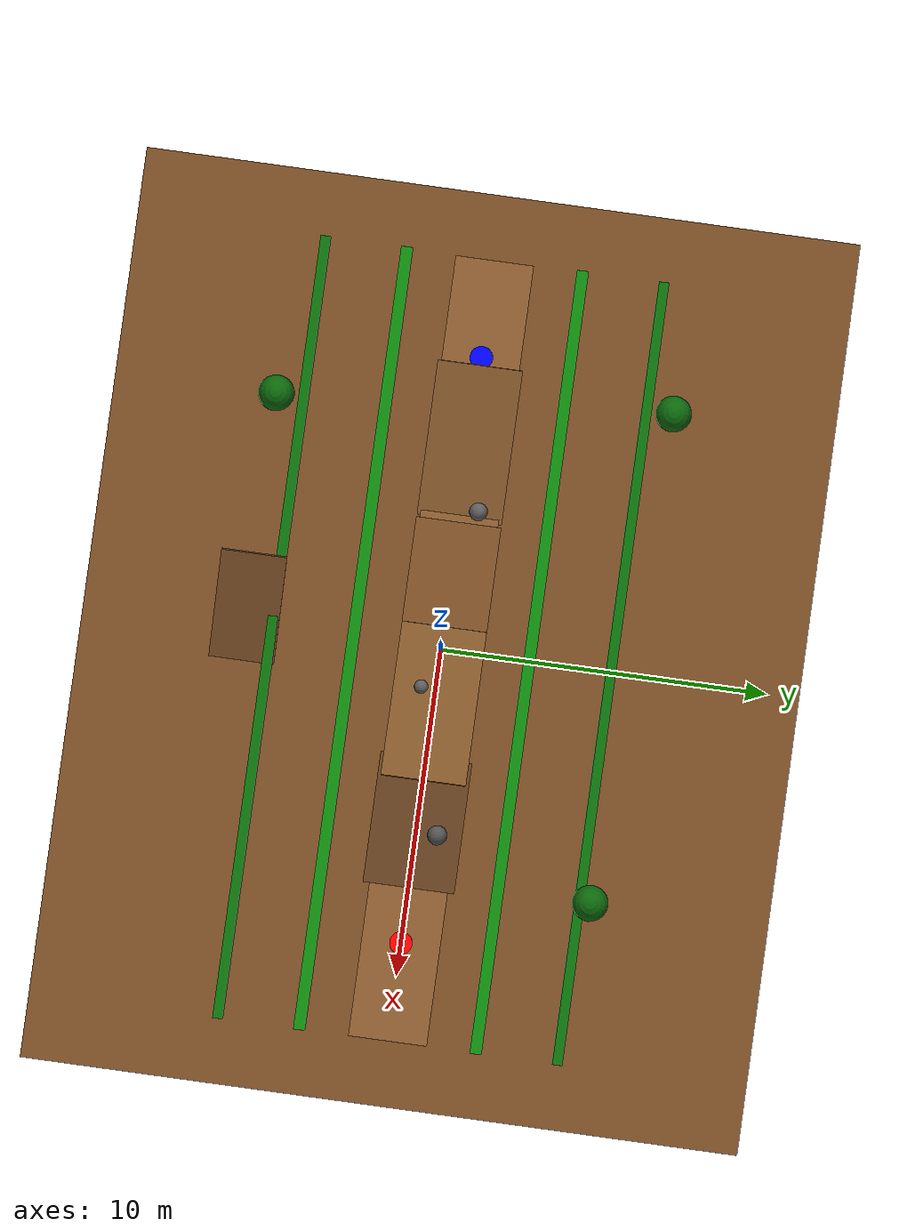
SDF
<?xml version="1.0" ?>
<sdf version="1.10">
  <world name="agricultural_world">

    <!-- FÍSICA -->

    <physics name="1ms" type="ignored">
      <max_step_size>0.001</max_step_size>
      <real_time_factor>1.0</real_time_factor>
    </physics>

    <plugin filename="gz-sim-physics-system"
            name="gz::sim::systems::Physics"/>

    <plugin filename="gz-sim-scene-broadcaster-system"
            name="gz::sim::systems::SceneBroadcaster"/>

    <plugin filename="gz-sim-user-commands-system"
            name="gz::sim::systems::UserCommands"/>

    <!-- Necessário para sensores como LiDAR -->
    <plugin filename="gz-sim-sensors-system"
            name="gz::sim::systems::Sensors">
      <render_engine>ogre2</render_engine>
    </plugin>

    <!-- Necessário depois para IMU / inclinação -->
    <plugin filename="gz-sim-imu-system"
            name="gz::sim::systems::Imu"/>

    <!-- LUZ DO SOL -->

    <light type="directional" name="sun">
      <cast_shadows>true</cast_shadows>
      <pose>0 0 15 0 0 0</pose>
      <diffuse>0.9 0.85 0.75 1</diffuse>
      <specular>0.2 0.2 0.2 1</specular>
      <direction>-0.5 0.2 -0.9</direction>
    </light>

    <!-- SOLO BASE -->

    <model name="soil_ground">
      <static>true</static>
      <pose>0 0 -0.05 0 0 0</pose>
      <link name="link">

        <collision name="collision">
          <geometry>
            <box>
              <size>28 22 0.10</size>
            </box>
          </geometry>
        </collision>

        <visual name="visual">
          <geometry>
            <box>
              <size>28 22 0.10</size>
            </box>
          </geometry>
          <material>
            <ambient>0.35 0.22 0.10 1</ambient>
            <diffuse>0.48 0.30 0.14 1</diffuse>
          </material>
        </visual>

      </link>
    </model>

    <!-- CAMINHO CENTRAL AGRÍCOLA -->

    <model name="central_dirt_path">
      <static>true</static>
      <pose>0 0 0.01 0 0 0</pose>
      <link name="link">
        <visual name="visual">
          <geometry>
            <box>
              <size>24 2.4 0.03</size>
            </box>
          </geometry>
          <material>
            <ambient>0.42 0.28 0.15 1</ambient>
            <diffuse>0.55 0.36 0.18 1</diffuse>
          </material>
        </visual>
      </link>
    </model>

    <!-- SUBIDA PRINCIPAL -->
    <!-- Inclinação aproximada: 10 graus -->

    <model name="slope_up_10deg">
      <static>true</static>
      <pose>-6 0 0.28 0 0.17 0</pose>
      <link name="link">

        <collision name="collision">
          <geometry>
            <box>
              <size>5.5 2.6 0.12</size>
            </box>
          </geometry>
        </collision>

        <visual name="visual">
          <geometry>
            <box>
              <size>5.5 2.6 0.12</size>
            </box>
          </geometry>
          <material>
            <ambient>0.38 0.24 0.11 1</ambient>
            <diffuse>0.52 0.34 0.16 1</diffuse>
          </material>
        </visual>

      </link>
    </model>

    <!-- PLATAFORMA ALTA -->

    <model name="upper_plateau">
      <static>true</static>
      <pose>-2.3 0 0.62 0 0 0</pose>
      <link name="link">

        <collision name="collision">
          <geometry>
            <box>
              <size>3.2 2.6 0.12</size>
            </box>
          </geometry>
        </collision>

        <visual name="visual">
          <geometry>
            <box>
              <size>3.2 2.6 0.12</size>
            </box>
          </geometry>
          <material>
            <ambient>0.36 0.23 0.10 1</ambient>
            <diffuse>0.50 0.32 0.15 1</diffuse>
          </material>
        </visual>

      </link>
    </model>

    <!-- DESCIDA PARA O VALE -->
    <!-- Inclinação aproximada: -10 graus -->

    <model name="slope_down_10deg">
      <static>true</static>
      <pose>1.3 0 0.35 0 -0.17 0</pose>
      <link name="link">

        <collision name="collision">
          <geometry>
            <box>
              <size>5.5 2.6 0.12</size>
            </box>
          </geometry>
        </collision>

        <visual name="visual">
          <geometry>
            <box>
              <size>5.5 2.6 0.12</size>
            </box>
          </geometry>
          <material>
            <ambient>0.38 0.24 0.11 1</ambient>
            <diffuse>0.52 0.34 0.16 1</diffuse>
          </material>
        </visual>

      </link>
    </model>

    <!-- VALE BAIXO -->
    <!-- Zona para testar estabilidade -->

    <model name="valley_low_area">
      <static>true</static>
      <pose>5.3 0 0.06 0 0 0</pose>
      <link name="link">

        <collision name="collision">
          <geometry>
            <box>
              <size>4.0 2.8 0.10</size>
            </box>
          </geometry>
        </collision>

        <visual name="visual">
          <geometry>
            <box>
              <size>4.0 2.8 0.10</size>
            </box>
          </geometry>
          <material>
            <ambient>0.30 0.19 0.09 1</ambient>
            <diffuse>0.40 0.25 0.12 1</diffuse>
          </material>
        </visual>

      </link>
    </model>

    <!-- RAMPA MAIS DIFÍCIL -->
    <!-- Inclinação aproximada: 20 graus -->
    <!-- Para teste extremo -->

    <model name="test_slope_20deg">
      <static>true</static>
      <pose>0 -6 0.35 0 0.35 0</pose>
      <link name="link">

        <collision name="collision">
          <geometry>
            <box>
              <size>4.5 2.0 0.12</size>
            </box>
          </geometry>
        </collision>

        <visual name="visual">
          <geometry>
            <box>
              <size>4.5 2.0 0.12</size>
            </box>
          </geometry>
          <material>
            <ambient>0.32 0.20 0.10 1</ambient>
            <diffuse>0.46 0.29 0.14 1</diffuse>
          </material>
        </visual>

      </link>
    </model>

    <!-- LINHAS DE CULTIVO -->
    <!-- Com colisão para servirem como limites -->

    <model name="crop_row_left_1">
      <static>true</static>
      <pose>0 2.7 0.32 0 0 0</pose>
      <link name="link">

        <collision name="collision">
          <geometry>
            <box>
              <size>24 0.35 0.60</size>
            </box>
          </geometry>
        </collision>

        <visual name="visual">
          <geometry>
            <box>
              <size>24 0.35 0.60</size>
            </box>
          </geometry>
          <material>
            <ambient>0.04 0.30 0.04 1</ambient>
            <diffuse>0.05 0.55 0.05 1</diffuse>
          </material>
        </visual>

      </link>
    </model>

    <model name="crop_row_right_1">
      <static>true</static>
      <pose>0 -2.7 0.32 0 0 0</pose>
      <link name="link">

        <collision name="collision">
          <geometry>
            <box>
              <size>24 0.35 0.60</size>
            </box>
          </geometry>
        </collision>

        <visual name="visual">
          <geometry>
            <box>
              <size>24 0.35 0.60</size>
            </box>
          </geometry>
          <material>
            <ambient>0.04 0.30 0.04 1</ambient>
            <diffuse>0.05 0.55 0.05 1</diffuse>
          </material>
        </visual>

      </link>
    </model>

    <model name="crop_row_left_2">
      <static>true</static>
      <pose>0 5.2 0.28 0 0 0</pose>
      <link name="link">
        <visual name="visual">
          <geometry>
            <box>
              <size>24 0.30 0.50</size>
            </box>
          </geometry>
          <material>
            <ambient>0.03 0.25 0.03 1</ambient>
            <diffuse>0.04 0.45 0.04 1</diffuse>
          </material>
        </visual>
      </link>
    </model>

    <model name="crop_row_right_2">
      <static>true</static>
      <pose>0 -5.2 0.28 0 0 0</pose>
      <link name="link">
        <visual name="visual">
          <geometry>
            <box>
              <size>24 0.30 0.50</size>
            </box>
          </geometry>
          <material>
            <ambient>0.03 0.25 0.03 1</ambient>
            <diffuse>0.04 0.45 0.04 1</diffuse>
          </material>
        </visual>
      </link>
    </model>

    <!-- PEDRAS / OBSTÁCULOS -->

    <model name="stone_1">
      <static>true</static>
      <pose>-4.3 0.55 0.55 0 0 0</pose>
      <link name="link">
        <collision name="collision">
          <geometry>
            <sphere>
              <radius>0.28</radius>
            </sphere>
          </geometry>
        </collision>
        <visual name="visual">
          <geometry>
            <sphere>
              <radius>0.28</radius>
            </sphere>
          </geometry>
          <material>
            <ambient>0.23 0.23 0.23 1</ambient>
            <diffuse>0.36 0.36 0.36 1</diffuse>
          </material>
        </visual>
      </link>
    </model>

    <model name="stone_2">
      <static>true</static>
      <pose>1.2 -0.45 0.35 0 0 0</pose>
      <link name="link">
        <collision name="collision">
          <geometry>
            <sphere>
              <radius>0.22</radius>
            </sphere>
          </geometry>
        </collision>
        <visual name="visual">
          <geometry>
            <sphere>
              <radius>0.22</radius>
            </sphere>
          </geometry>
          <material>
            <ambient>0.23 0.23 0.23 1</ambient>
            <diffuse>0.36 0.36 0.36 1</diffuse>
          </material>
        </visual>
      </link>
    </model>

    <model name="stone_3">
      <static>true</static>
      <pose>5.6 0.65 0.28 0 0 0</pose>
      <link name="link">
        <collision name="collision">
          <geometry>
            <sphere>
              <radius>0.30</radius>
            </sphere>
          </geometry>
        </collision>
        <visual name="visual">
          <geometry>
            <sphere>
              <radius>0.30</radius>
            </sphere>
          </geometry>
          <material>
            <ambient>0.20 0.20 0.20 1</ambient>
            <diffuse>0.32 0.32 0.32 1</diffuse>
          </material>
        </visual>
      </link>
    </model>

    <!-- ÁRVORES -->

    <model name="tree_1">
      <static>true</static>
      <pose>-8 6 0 0 0 0</pose>
      <link name="trunk">
        <collision name="collision">
          <pose>0 0 0.5 0 0 0</pose>
          <geometry>
            <cylinder>
              <radius>0.10</radius>
              <length>1.0</length>
            </cylinder>
          </geometry>
        </collision>

        <visual name="trunk_visual">
          <pose>0 0 0.5 0 0 0</pose>
          <geometry>
            <cylinder>
              <radius>0.10</radius>
              <length>1.0</length>
            </cylinder>
          </geometry>
          <material>
            <ambient>0.25 0.12 0.04 1</ambient>
            <diffuse>0.35 0.18 0.06 1</diffuse>
          </material>
        </visual>

        <visual name="leaves_visual">
          <pose>0 0 1.25 0 0 0</pose>
          <geometry>
            <sphere>
              <radius>0.55</radius>
            </sphere>
          </geometry>
          <material>
            <ambient>0.02 0.22 0.02 1</ambient>
            <diffuse>0.04 0.40 0.04 1</diffuse>
          </material>
        </visual>
      </link>
    </model>

    <model name="tree_2">
      <static>true</static>
      <pose>7 5.5 0 0 0 0</pose>
      <link name="trunk">
        <collision name="collision">
          <pose>0 0 0.5 0 0 0</pose>
          <geometry>
            <cylinder>
              <radius>0.10</radius>
              <length>1.0</length>
            </cylinder>
          </geometry>
        </collision>

        <visual name="trunk_visual">
          <pose>0 0 0.5 0 0 0</pose>
          <geometry>
            <cylinder>
              <radius>0.10</radius>
              <length>1.0</length>
            </cylinder>
          </geometry>
          <material>
            <ambient>0.25 0.12 0.04 1</ambient>
            <diffuse>0.35 0.18 0.06 1</diffuse>
          </material>
        </visual>

        <visual name="leaves_visual">
          <pose>0 0 1.25 0 0 0</pose>
          <geometry>
            <sphere>
              <radius>0.55</radius>
            </sphere>
          </geometry>
          <material>
            <ambient>0.02 0.22 0.02 1</ambient>
            <diffuse>0.04 0.40 0.04 1</diffuse>
          </material>
        </visual>
      </link>
    </model>

    <model name="tree_3">
      <static>true</static>
      <pose>-7 -6 0 0 0 0</pose>
      <link name="trunk">
        <collision name="collision">
          <pose>0 0 0.5 0 0 0</pose>
          <geometry>
            <cylinder>
              <radius>0.10</radius>
              <length>1.0</length>
            </cylinder>
          </geometry>
        </collision>

        <visual name="trunk_visual">
          <pose>0 0 0.5 0 0 0</pose>
          <geometry>
            <cylinder>
              <radius>0.10</radius>
              <length>1.0</length>
            </cylinder>
          </geometry>
          <material>
            <ambient>0.25 0.12 0.04 1</ambient>
            <diffuse>0.35 0.18 0.06 1</diffuse>
          </material>
        </visual>

        <visual name="leaves_visual">
          <pose>0 0 1.25 0 0 0</pose>
          <geometry>
            <sphere>
              <radius>0.55</radius>
            </sphere>
          </geometry>
          <material>
            <ambient>0.02 0.22 0.02 1</ambient>
            <diffuse>0.04 0.40 0.04 1</diffuse>
          </material>
        </visual>
      </link>
    </model>

    <!-- MARCADOR DE INÍCIO -->

    <model name="start_marker">
      <static>true</static>
      <pose>-9 0 0.04 0 0 0</pose>
      <link name="link">
        <visual name="visual">
          <geometry>
            <cylinder>
              <radius>0.35</radius>
              <length>0.04</length>
            </cylinder>
          </geometry>
          <material>
            <ambient>0 0 1 1</ambient>
            <diffuse>0 0 1 1</diffuse>
          </material>
        </visual>
      </link>
    </model>

    <!-- MARCADOR DE DESTINO -->

    <model name="goal_marker">
      <static>true</static>
      <pose>9 0 0.04 0 0 0</pose>
      <link name="link">
        <visual name="visual">
          <geometry>
            <cylinder>
              <radius>0.35</radius>
              <length>0.04</length>
            </cylinder>
          </geometry>
          <material>
            <ambient>1 0 0 1</ambient>
            <diffuse>1 0 0 1</diffuse>
          </material>
        </visual>
      </link>
    </model>

  </world>
</sdf>
